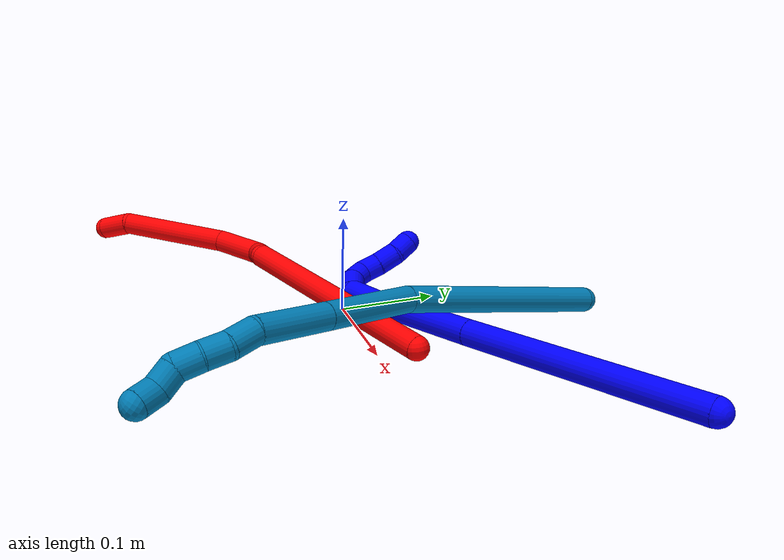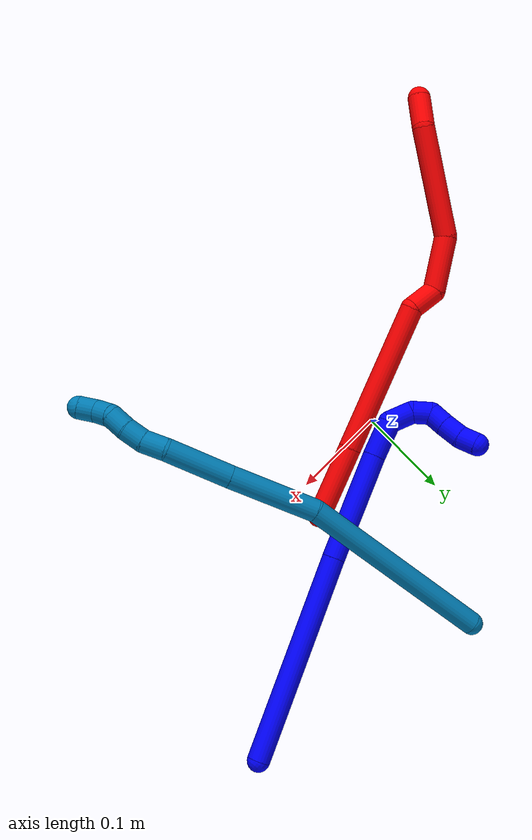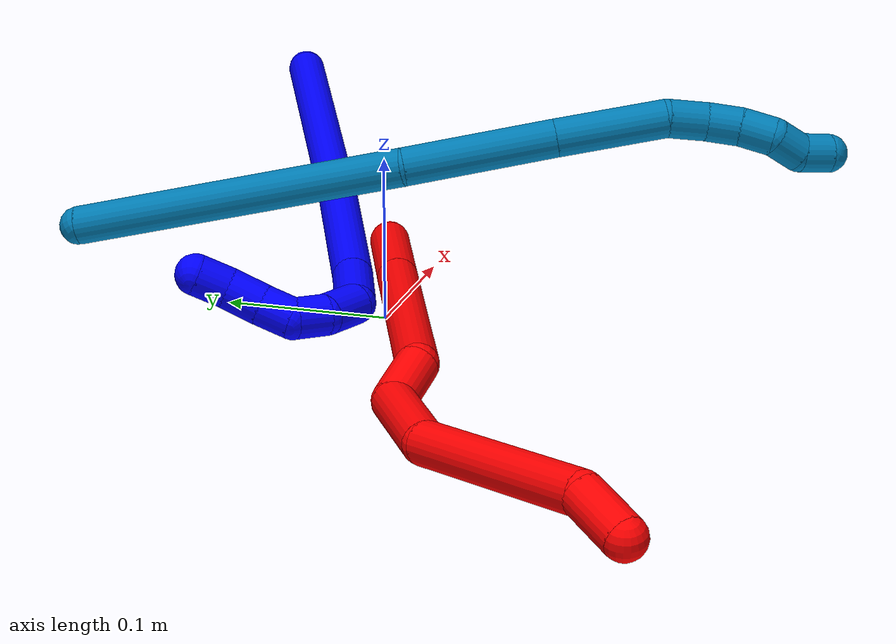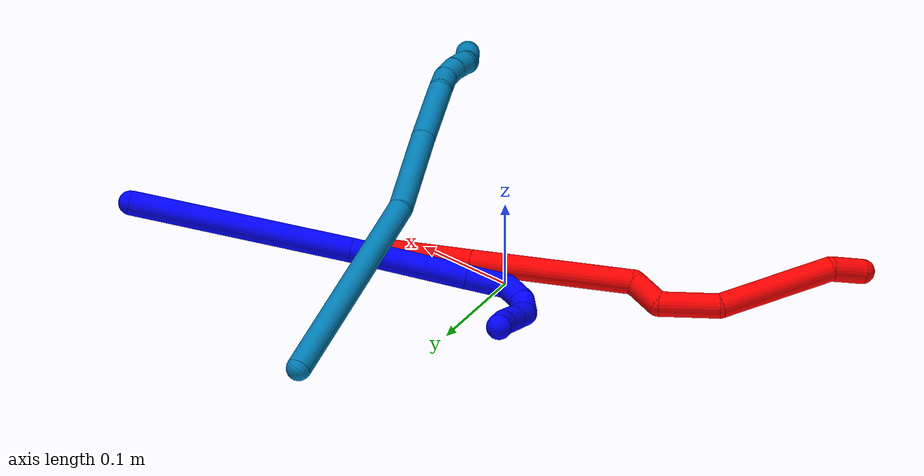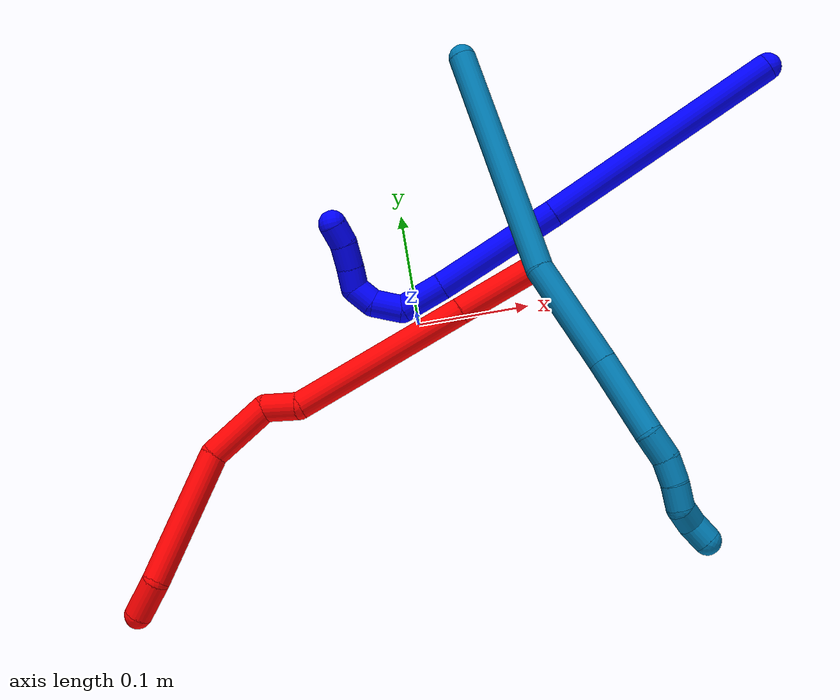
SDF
<sdf version="1.7">
 <world name="default">
  <model name="1">
   <static>0</static>
   <link name="1">
    <collision name="collision-cylinder-e_1_1_4">
     <pose>-0.006613 -0.04059 -0.106504 2.77748 -0.057953 -0.312323</pose>
     <geometry><cylinder><radius>0.0125</radius><length>0.228337</length></cylinder></geometry>
     <surface>
      <friction><ode><mu>1.16</mu><mu2>1.16</mu2><slip1>0</slip1><slip2>0</slip2></ode></friction>
      <contact><ode><kp>1e+06</kp><kd>1</kd><max_vel>0</max_vel><min_depth>0.001</min_depth></ode></contact>
     </surface>
    </collision>
    <visual name="visual-cylinder-e_1_1_4">
     <pose>-0.006613 -0.04059 -0.106504 2.77748 -0.057953 -0.312323</pose>
     <geometry><cylinder><radius>0.0125</radius><length>0.228337</length></cylinder></geometry>
     <material><ambient>0 0 1 1</ambient></material>
    </visual>
    <collision name="collision-cylinder-e_2_4_5">
     <pose>-0.016884 -0.101074 -0.269164 2.80113 -0.061324 -0.353146</pose>
     <geometry><cylinder><radius>0.0125</radius><length>0.119375</length></cylinder></geometry>
     <surface>
      <friction><ode><mu>1.16</mu><mu2>1.16</mu2><slip1>0</slip1><slip2>0</slip2></ode></friction>
      <contact><ode><kp>1e+06</kp><kd>1</kd><max_vel>0</max_vel><min_depth>0.001</min_depth></ode></contact>
     </surface>
    </collision>
    <visual name="visual-cylinder-e_2_4_5">
     <pose>-0.016884 -0.101074 -0.269164 2.80113 -0.061324 -0.353146</pose>
     <geometry><cylinder><radius>0.0125</radius><length>0.119375</length></cylinder></geometry>
     <material><ambient>0 0 1 1</ambient></material>
    </visual>
    <collision name="collision-cylinder-e_3_5_6">
     <pose>-0.022956 -0.127219 -0.344684 2.82931 -0.11809 -0.718445</pose>
     <geometry><cylinder><radius>0.0125</radius><length>0.040981</length></cylinder></geometry>
     <surface>
      <friction><ode><mu>1.16</mu><mu2>1.16</mu2><slip1>0</slip1><slip2>0</slip2></ode></friction>
      <contact><ode><kp>1e+06</kp><kd>1</kd><max_vel>0</max_vel><min_depth>0.001</min_depth></ode></contact>
     </surface>
    </collision>
    <visual name="visual-cylinder-e_3_5_6">
     <pose>-0.022956 -0.127219 -0.344684 2.82931 -0.11809 -0.718445</pose>
     <geometry><cylinder><radius>0.0125</radius><length>0.040981</length></cylinder></geometry>
     <material><ambient>0 0 1 1</ambient></material>
    </visual>
    <collision name="collision-cylinder-e_4_6_7">
     <pose>-0.030035 -0.12842 -0.375773 -2.73487 -0.350362 1.4186</pose>
     <geometry><cylinder><radius>0.0125</radius><length>0.027186</length></cylinder></geometry>
     <surface>
      <friction><ode><mu>1.16</mu><mu2>1.16</mu2><slip1>0</slip1><slip2>0</slip2></ode></friction>
      <contact><ode><kp>1e+06</kp><kd>1</kd><max_vel>0</max_vel><min_depth>0.001</min_depth></ode></contact>
     </surface>
    </collision>
    <visual name="visual-cylinder-e_4_6_7">
     <pose>-0.030035 -0.12842 -0.375773 -2.73487 -0.350362 1.4186</pose>
     <geometry><cylinder><radius>0.0125</radius><length>0.027186</length></cylinder></geometry>
     <material><ambient>0 0 1 1</ambient></material>
    </visual>
    <collision name="collision-cylinder-e_5_7_8">
     <pose>-0.038416 -0.115654 -0.393464 -2.22902 -0.363999 0.717449</pose>
     <geometry><cylinder><radius>0.0125</radius><length>0.020872</length></cylinder></geometry>
     <surface>
      <friction><ode><mu>1.16</mu><mu2>1.16</mu2><slip1>0</slip1><slip2>0</slip2></ode></friction>
      <contact><ode><kp>1e+06</kp><kd>1</kd><max_vel>0</max_vel><min_depth>0.001</min_depth></ode></contact>
     </surface>
    </collision>
    <visual name="visual-cylinder-e_5_7_8">
     <pose>-0.038416 -0.115654 -0.393464 -2.22902 -0.363999 0.717449</pose>
     <geometry><cylinder><radius>0.0125</radius><length>0.020872</length></cylinder></geometry>
     <material><ambient>0 0 1 1</ambient></material>
    </visual>
    <collision name="collision-cylinder-e_6_8_9">
     <pose>-0.047348 -0.099367 -0.398174 -1.42532 -0.541912 0.47119</pose>
     <geometry><cylinder><radius>0.0125</radius><length>0.020225</length></cylinder></geometry>
     <surface>
      <friction><ode><mu>1.16</mu><mu2>1.16</mu2><slip1>0</slip1><slip2>0</slip2></ode></friction>
      <contact><ode><kp>1e+06</kp><kd>1</kd><max_vel>0</max_vel><min_depth>0.001</min_depth></ode></contact>
     </surface>
    </collision>
    <visual name="visual-cylinder-e_6_8_9">
     <pose>-0.047348 -0.099367 -0.398174 -1.42532 -0.541912 0.47119</pose>
     <geometry><cylinder><radius>0.0125</radius><length>0.020225</length></cylinder></geometry>
     <material><ambient>0 0 1 1</ambient></material>
    </visual>
    <collision name="collision-cylinder-e_7_9_10">
     <pose>-0.05922 -0.081665 -0.395887 -1.45833 -0.62697 0.563821</pose>
     <geometry><cylinder><radius>0.0125</radius><length>0.022691</length></cylinder></geometry>
     <surface>
      <friction><ode><mu>1.16</mu><mu2>1.16</mu2><slip1>0</slip1><slip2>0</slip2></ode></friction>
      <contact><ode><kp>1e+06</kp><kd>1</kd><max_vel>0</max_vel><min_depth>0.001</min_depth></ode></contact>
     </surface>
    </collision>
    <visual name="visual-cylinder-e_7_9_10">
     <pose>-0.05922 -0.081665 -0.395887 -1.45833 -0.62697 0.563821</pose>
     <geometry><cylinder><radius>0.0125</radius><length>0.022691</length></cylinder></geometry>
     <material><ambient>0 0 1 1</ambient></material>
    </visual>
    <collision name="collision-cylinder-e_8_10_2">
     <pose>-0.072529 -0.064958 -0.396149 -1.73979 -0.713363 0.831662</pose>
     <geometry><cylinder><radius>0.0125</radius><length>0.020333</length></cylinder></geometry>
     <surface>
      <friction><ode><mu>1.16</mu><mu2>1.16</mu2><slip1>0</slip1><slip2>0</slip2></ode></friction>
      <contact><ode><kp>1e+06</kp><kd>1</kd><max_vel>0</max_vel><min_depth>0.001</min_depth></ode></contact>
     </surface>
    </collision>
    <visual name="visual-cylinder-e_8_10_2">
     <pose>-0.072529 -0.064958 -0.396149 -1.73979 -0.713363 0.831662</pose>
     <geometry><cylinder><radius>0.0125</radius><length>0.020333</length></cylinder></geometry>
     <material><ambient>0 0 1 1</ambient></material>
    </visual>
    <collision name="collision-sphere-2">
     <pose>-0.079181 -0.05738 -0.397442 0 -0 0</pose>
     <geometry><sphere><radius>0.0125</radius></sphere></geometry>
     <surface>
      <friction><ode><mu>1.16</mu><mu2>1.16</mu2><slip1>0</slip1><slip2>0</slip2></ode></friction>
      <contact><ode><kp>1e+06</kp><kd>1</kd><max_vel>0</max_vel><min_depth>0.001</min_depth></ode></contact>
     </surface>
    </collision>
    <visual name="visual-sphere-2">
     <pose>-0.079181 -0.05738 -0.397442 0 -0 0</pose>
     <geometry><sphere><radius>0.0125</radius></sphere></geometry>
     <material><ambient>0 0 1 1</ambient></material>
    </visual>
    <collision name="collision-sphere-10">
     <pose>-0.065876 -0.072535 -0.394856 0 -0 0</pose>
     <geometry><sphere><radius>0.0125</radius></sphere></geometry>
     <surface>
      <friction><ode><mu>1.16</mu><mu2>1.16</mu2><slip1>0</slip1><slip2>0</slip2></ode></friction>
      <contact><ode><kp>1e+06</kp><kd>1</kd><max_vel>0</max_vel><min_depth>0.001</min_depth></ode></contact>
     </surface>
    </collision>
    <visual name="visual-sphere-10">
     <pose>-0.065876 -0.072535 -0.394856 0 -0 0</pose>
     <geometry><sphere><radius>0.0125</radius></sphere></geometry>
     <material><ambient>0 0 1 1</ambient></material>
    </visual>
    <collision name="collision-sphere-9">
     <pose>-0.052563 -0.090795 -0.396918 0 -0 0</pose>
     <geometry><sphere><radius>0.0125</radius></sphere></geometry>
     <surface>
      <friction><ode><mu>1.16</mu><mu2>1.16</mu2><slip1>0</slip1><slip2>0</slip2></ode></friction>
      <contact><ode><kp>1e+06</kp><kd>1</kd><max_vel>0</max_vel><min_depth>0.001</min_depth></ode></contact>
     </surface>
    </collision>
    <visual name="visual-sphere-9">
     <pose>-0.052563 -0.090795 -0.396918 0 -0 0</pose>
     <geometry><sphere><radius>0.0125</radius></sphere></geometry>
     <material><ambient>0 0 1 1</ambient></material>
    </visual>
    <collision name="collision-sphere-4">
     <pose>-0.013226 -0.08118 -0.213009 0 -0 0</pose>
     <geometry><sphere><radius>0.0125</radius></sphere></geometry>
     <surface>
      <friction><ode><mu>1.16</mu><mu2>1.16</mu2><slip1>0</slip1><slip2>0</slip2></ode></friction>
      <contact><ode><kp>1e+06</kp><kd>1</kd><max_vel>0</max_vel><min_depth>0.001</min_depth></ode></contact>
     </surface>
    </collision>
    <visual name="visual-sphere-4">
     <pose>-0.013226 -0.08118 -0.213009 0 -0 0</pose>
     <geometry><sphere><radius>0.0125</radius></sphere></geometry>
     <material><ambient>0 0 1 1</ambient></material>
    </visual>
    <collision name="collision-sphere-1">
     <geometry><sphere><radius>0.0125</radius></sphere></geometry>
     <surface>
      <friction><ode><mu>1.16</mu><mu2>1.16</mu2><slip1>0</slip1><slip2>0</slip2></ode></friction>
      <contact><ode><kp>1e+06</kp><kd>1</kd><max_vel>0</max_vel><min_depth>0.001</min_depth></ode></contact>
     </surface>
    </collision>
    <visual name="visual-sphere-1">
     <geometry><sphere><radius>0.0125</radius></sphere></geometry>
     <material><ambient>0 0 1 1</ambient></material>
    </visual>
    <collision name="collision-sphere-8">
     <pose>-0.042132 -0.107939 -0.39943 0 -0 0</pose>
     <geometry><sphere><radius>0.0125</radius></sphere></geometry>
     <surface>
      <friction><ode><mu>1.16</mu><mu2>1.16</mu2><slip1>0</slip1><slip2>0</slip2></ode></friction>
      <contact><ode><kp>1e+06</kp><kd>1</kd><max_vel>0</max_vel><min_depth>0.001</min_depth></ode></contact>
     </surface>
    </collision>
    <visual name="visual-sphere-8">
     <pose>-0.042132 -0.107939 -0.39943 0 -0 0</pose>
     <geometry><sphere><radius>0.0125</radius></sphere></geometry>
     <material><ambient>0 0 1 1</ambient></material>
    </visual>
    <collision name="collision-sphere-5">
     <pose>-0.020542 -0.120968 -0.32532 0 -0 0</pose>
     <geometry><sphere><radius>0.0125</radius></sphere></geometry>
     <surface>
      <friction><ode><mu>1.16</mu><mu2>1.16</mu2><slip1>0</slip1><slip2>0</slip2></ode></friction>
      <contact><ode><kp>1e+06</kp><kd>1</kd><max_vel>0</max_vel><min_depth>0.001</min_depth></ode></contact>
     </surface>
    </collision>
    <visual name="visual-sphere-5">
     <pose>-0.020542 -0.120968 -0.32532 0 -0 0</pose>
     <geometry><sphere><radius>0.0125</radius></sphere></geometry>
     <material><ambient>0 0 1 1</ambient></material>
    </visual>
    <collision name="collision-sphere-6">
     <pose>-0.02537 -0.13347 -0.364047 0 -0 0</pose>
     <geometry><sphere><radius>0.0125</radius></sphere></geometry>
     <surface>
      <friction><ode><mu>1.16</mu><mu2>1.16</mu2><slip1>0</slip1><slip2>0</slip2></ode></friction>
      <contact><ode><kp>1e+06</kp><kd>1</kd><max_vel>0</max_vel><min_depth>0.001</min_depth></ode></contact>
     </surface>
    </collision>
    <visual name="visual-sphere-6">
     <pose>-0.02537 -0.13347 -0.364047 0 -0 0</pose>
     <geometry><sphere><radius>0.0125</radius></sphere></geometry>
     <material><ambient>0 0 1 1</ambient></material>
    </visual>
    <collision name="collision-sphere-7">
     <pose>-0.034701 -0.123369 -0.387499 0 -0 0</pose>
     <geometry><sphere><radius>0.0125</radius></sphere></geometry>
     <surface>
      <friction><ode><mu>1.16</mu><mu2>1.16</mu2><slip1>0</slip1><slip2>0</slip2></ode></friction>
      <contact><ode><kp>1e+06</kp><kd>1</kd><max_vel>0</max_vel><min_depth>0.001</min_depth></ode></contact>
     </surface>
    </collision>
    <visual name="visual-sphere-7">
     <pose>-0.034701 -0.123369 -0.387499 0 -0 0</pose>
     <geometry><sphere><radius>0.0125</radius></sphere></geometry>
     <material><ambient>0 0 1 1</ambient></material>
    </visual>
    <inertial>
     <pose>-0.019721 -0.075272 -0.22819 0 -0 0</pose>
     <mass>0.5</mass>
     <inertia>
      <ixx>0.000735</ixx>
      <ixy>0</ixy>
      <ixz>0</ixz>
      <iyy>-0.001377</iyy>
      <iyz>0</iyz>
      <izz>0.000442</izz>
     </inertia>
    </inertial>
   </link>
   <pose>0.341375 0.169291 0.055638 -0.672979 1.23132 -0.619052</pose>
  </model>
  <model name="2">
   <static>0</static>
   <link name="2">
    <collision name="collision-cylinder-e_1_1_4">
     <pose>-0.034632 -0.018535 0.011125 1.03022 -1.01277 -0.608442</pose>
     <geometry><cylinder><radius>0.0125</radius><length>0.08165</length></cylinder></geometry>
     <surface>
      <friction><ode><mu>1.16</mu><mu2>1.16</mu2><slip1>0</slip1><slip2>0</slip2></ode></friction>
      <contact><ode><kp>1e+06</kp><kd>1</kd><max_vel>0</max_vel><min_depth>0.001</min_depth></ode></contact>
     </surface>
    </collision>
    <visual name="visual-cylinder-e_1_1_4">
     <pose>-0.034632 -0.018535 0.011125 1.03022 -1.01277 -0.608442</pose>
     <geometry><cylinder><radius>0.0125</radius><length>0.08165</length></cylinder></geometry>
     <material><ambient>1 0 0 1</ambient></material>
    </visual>
    <collision name="collision-cylinder-e_2_4_5">
     <pose>-0.139704 -0.075098 0.044889 1.03381 -1.00983 -0.608848</pose>
     <geometry><cylinder><radius>0.0125</radius><length>0.166379</length></cylinder></geometry>
     <surface>
      <friction><ode><mu>1.16</mu><mu2>1.16</mu2><slip1>0</slip1><slip2>0</slip2></ode></friction>
      <contact><ode><kp>1e+06</kp><kd>1</kd><max_vel>0</max_vel><min_depth>0.001</min_depth></ode></contact>
     </surface>
    </collision>
    <visual name="visual-cylinder-e_2_4_5">
     <pose>-0.139704 -0.075098 0.044889 1.03381 -1.00983 -0.608848</pose>
     <geometry><cylinder><radius>0.0125</radius><length>0.166379</length></cylinder></geometry>
     <material><ambient>1 0 0 1</ambient></material>
    </visual>
    <collision name="collision-cylinder-e_3_5_6">
     <pose>-0.226825 -0.113369 0.065898 2.99337 -1.4723 -2.97806</pose>
     <geometry><cylinder><radius>0.0125</radius><length>0.033523</length></cylinder></geometry>
     <surface>
      <friction><ode><mu>1.16</mu><mu2>1.16</mu2><slip1>0</slip1><slip2>0</slip2></ode></friction>
      <contact><ode><kp>1e+06</kp><kd>1</kd><max_vel>0</max_vel><min_depth>0.001</min_depth></ode></contact>
     </surface>
    </collision>
    <visual name="visual-cylinder-e_3_5_6">
     <pose>-0.226825 -0.113369 0.065898 2.99337 -1.4723 -2.97806</pose>
     <geometry><cylinder><radius>0.0125</radius><length>0.033523</length></cylinder></geometry>
     <material><ambient>1 0 0 1</ambient></material>
    </visual>
    <collision name="collision-cylinder-e_4_6_7">
     <pose>-0.266298 -0.132873 0.070943 1.23718 -0.841128 -0.616399</pose>
     <geometry><cylinder><radius>0.0125</radius><length>0.061156</length></cylinder></geometry>
     <surface>
      <friction><ode><mu>1.16</mu><mu2>1.16</mu2><slip1>0</slip1><slip2>0</slip2></ode></friction>
      <contact><ode><kp>1e+06</kp><kd>1</kd><max_vel>0</max_vel><min_depth>0.001</min_depth></ode></contact>
     </surface>
    </collision>
    <visual name="visual-cylinder-e_4_6_7">
     <pose>-0.266298 -0.132873 0.070943 1.23718 -0.841128 -0.616399</pose>
     <geometry><cylinder><radius>0.0125</radius><length>0.061156</length></cylinder></geometry>
     <material><ambient>1 0 0 1</ambient></material>
    </visual>
    <collision name="collision-cylinder-e_5_7_8">
     <pose>-0.313047 -0.205436 0.093455 1.28199 -0.406792 -0.305365</pose>
     <geometry><cylinder><radius>0.0125</radius><length>0.121093</length></cylinder></geometry>
     <surface>
      <friction><ode><mu>1.16</mu><mu2>1.16</mu2><slip1>0</slip1><slip2>0</slip2></ode></friction>
      <contact><ode><kp>1e+06</kp><kd>1</kd><max_vel>0</max_vel><min_depth>0.001</min_depth></ode></contact>
     </surface>
    </collision>
    <visual name="visual-cylinder-e_5_7_8">
     <pose>-0.313047 -0.205436 0.093455 1.28199 -0.406792 -0.305365</pose>
     <geometry><cylinder><radius>0.0125</radius><length>0.121093</length></cylinder></geometry>
     <material><ambient>1 0 0 1</ambient></material>
    </visual>
    <collision name="collision-cylinder-e_6_8_2">
     <pose>-0.346994 -0.273701 0.107325 1.70148 -0.584804 -0.661183</pose>
     <geometry><cylinder><radius>0.0125</radius><length>0.036199</length></cylinder></geometry>
     <surface>
      <friction><ode><mu>1.16</mu><mu2>1.16</mu2><slip1>0</slip1><slip2>0</slip2></ode></friction>
      <contact><ode><kp>1e+06</kp><kd>1</kd><max_vel>0</max_vel><min_depth>0.001</min_depth></ode></contact>
     </surface>
    </collision>
    <visual name="visual-cylinder-e_6_8_2">
     <pose>-0.346994 -0.273701 0.107325 1.70148 -0.584804 -0.661183</pose>
     <geometry><cylinder><radius>0.0125</radius><length>0.036199</length></cylinder></geometry>
     <material><ambient>1 0 0 1</ambient></material>
    </visual>
    <collision name="collision-sphere-2">
     <pose>-0.356986 -0.288664 0.105359 0 -0 0</pose>
     <geometry><sphere><radius>0.0125</radius></sphere></geometry>
     <surface>
      <friction><ode><mu>1.16</mu><mu2>1.16</mu2><slip1>0</slip1><slip2>0</slip2></ode></friction>
      <contact><ode><kp>1e+06</kp><kd>1</kd><max_vel>0</max_vel><min_depth>0.001</min_depth></ode></contact>
     </surface>
    </collision>
    <visual name="visual-sphere-2">
     <pose>-0.356986 -0.288664 0.105359 0 -0 0</pose>
     <geometry><sphere><radius>0.0125</radius></sphere></geometry>
     <material><ambient>1 0 0 1</ambient></material>
    </visual>
    <collision name="collision-sphere-4">
     <pose>-0.069264 -0.03707 0.02225 0 -0 0</pose>
     <geometry><sphere><radius>0.0125</radius></sphere></geometry>
     <surface>
      <friction><ode><mu>1.16</mu><mu2>1.16</mu2><slip1>0</slip1><slip2>0</slip2></ode></friction>
      <contact><ode><kp>1e+06</kp><kd>1</kd><max_vel>0</max_vel><min_depth>0.001</min_depth></ode></contact>
     </surface>
    </collision>
    <visual name="visual-sphere-4">
     <pose>-0.069264 -0.03707 0.02225 0 -0 0</pose>
     <geometry><sphere><radius>0.0125</radius></sphere></geometry>
     <material><ambient>1 0 0 1</ambient></material>
    </visual>
    <collision name="collision-sphere-1">
     <geometry><sphere><radius>0.0125</radius></sphere></geometry>
     <surface>
      <friction><ode><mu>1.16</mu><mu2>1.16</mu2><slip1>0</slip1><slip2>0</slip2></ode></friction>
      <contact><ode><kp>1e+06</kp><kd>1</kd><max_vel>0</max_vel><min_depth>0.001</min_depth></ode></contact>
     </surface>
    </collision>
    <visual name="visual-sphere-1">
     <geometry><sphere><radius>0.0125</radius></sphere></geometry>
     <material><ambient>1 0 0 1</ambient></material>
    </visual>
    <collision name="collision-sphere-8">
     <pose>-0.337003 -0.258738 0.109292 0 -0 0</pose>
     <geometry><sphere><radius>0.0125</radius></sphere></geometry>
     <surface>
      <friction><ode><mu>1.16</mu><mu2>1.16</mu2><slip1>0</slip1><slip2>0</slip2></ode></friction>
      <contact><ode><kp>1e+06</kp><kd>1</kd><max_vel>0</max_vel><min_depth>0.001</min_depth></ode></contact>
     </surface>
    </collision>
    <visual name="visual-sphere-8">
     <pose>-0.337003 -0.258738 0.109292 0 -0 0</pose>
     <geometry><sphere><radius>0.0125</radius></sphere></geometry>
     <material><ambient>1 0 0 1</ambient></material>
    </visual>
    <collision name="collision-sphere-5">
     <pose>-0.210144 -0.113126 0.067529 0 -0 0</pose>
     <geometry><sphere><radius>0.0125</radius></sphere></geometry>
     <surface>
      <friction><ode><mu>1.16</mu><mu2>1.16</mu2><slip1>0</slip1><slip2>0</slip2></ode></friction>
      <contact><ode><kp>1e+06</kp><kd>1</kd><max_vel>0</max_vel><min_depth>0.001</min_depth></ode></contact>
     </surface>
    </collision>
    <visual name="visual-sphere-5">
     <pose>-0.210144 -0.113126 0.067529 0 -0 0</pose>
     <geometry><sphere><radius>0.0125</radius></sphere></geometry>
     <material><ambient>1 0 0 1</ambient></material>
    </visual>
    <collision name="collision-sphere-6">
     <pose>-0.243505 -0.113613 0.064268 0 -0 0</pose>
     <geometry><sphere><radius>0.0125</radius></sphere></geometry>
     <surface>
      <friction><ode><mu>1.16</mu><mu2>1.16</mu2><slip1>0</slip1><slip2>0</slip2></ode></friction>
      <contact><ode><kp>1e+06</kp><kd>1</kd><max_vel>0</max_vel><min_depth>0.001</min_depth></ode></contact>
     </surface>
    </collision>
    <visual name="visual-sphere-6">
     <pose>-0.243505 -0.113613 0.064268 0 -0 0</pose>
     <geometry><sphere><radius>0.0125</radius></sphere></geometry>
     <material><ambient>1 0 0 1</ambient></material>
    </visual>
    <collision name="collision-sphere-7">
     <pose>-0.28909 -0.152133 0.077618 0 -0 0</pose>
     <geometry><sphere><radius>0.0125</radius></sphere></geometry>
     <surface>
      <friction><ode><mu>1.16</mu><mu2>1.16</mu2><slip1>0</slip1><slip2>0</slip2></ode></friction>
      <contact><ode><kp>1e+06</kp><kd>1</kd><max_vel>0</max_vel><min_depth>0.001</min_depth></ode></contact>
     </surface>
    </collision>
    <visual name="visual-sphere-7">
     <pose>-0.28909 -0.152133 0.077618 0 -0 0</pose>
     <geometry><sphere><radius>0.0125</radius></sphere></geometry>
     <material><ambient>1 0 0 1</ambient></material>
    </visual>
    <inertial>
     <pose>-0.200859 -0.121438 0.060253 0 -0 0</pose>
     <mass>0.5</mass>
     <inertia>
      <ixx>0.000125</ixx>
      <ixy>0</ixy>
      <ixz>0</ixz>
      <iyy>0.000237</iyy>
      <iyz>0</iyz>
      <izz>0.000817</izz>
     </inertia>
    </inertial>
   </link>
   <pose>0.114167 0.03373 0.009665 0.092354 -0.217867 -0.127751</pose>
  </model>
  <model name="9">
   <static>0</static>
   <link name="9">
    <collision name="collision-cylinder-e_1_1_4">
     <pose>-0.016926 -0.058798 0.09027 0.57733 -0.155842 -0.046364</pose>
     <geometry><cylinder><radius>0.0125</radius><length>0.218104</length></cylinder></geometry>
     <surface>
      <friction><ode><mu>1.16</mu><mu2>1.16</mu2><slip1>0</slip1><slip2>0</slip2></ode></friction>
      <contact><ode><kp>1e+06</kp><kd>1</kd><max_vel>0</max_vel><min_depth>0.001</min_depth></ode></contact>
     </surface>
    </collision>
    <visual name="visual-cylinder-e_1_1_4">
     <pose>-0.016926 -0.058798 0.09027 0.57733 -0.155842 -0.046364</pose>
     <geometry><cylinder><radius>0.0125</radius><length>0.218104</length></cylinder></geometry>
     <material><ambient>0 0.490196 0.709804 1</ambient></material>
    </visual>
    <collision name="collision-cylinder-e_2_4_5">
     <pose>-0.036159 -0.153053 0.214689 0.804183 -0.046823 -0.019915</pose>
     <geometry><cylinder><radius>0.0125</radius><length>0.098565</length></cylinder></geometry>
     <surface>
      <friction><ode><mu>1.16</mu><mu2>1.16</mu2><slip1>0</slip1><slip2>0</slip2></ode></friction>
      <contact><ode><kp>1e+06</kp><kd>1</kd><max_vel>0</max_vel><min_depth>0.001</min_depth></ode></contact>
     </surface>
    </collision>
    <visual name="visual-cylinder-e_2_4_5">
     <pose>-0.036159 -0.153053 0.214689 0.804183 -0.046823 -0.019915</pose>
     <geometry><cylinder><radius>0.0125</radius><length>0.098565</length></cylinder></geometry>
     <material><ambient>0 0.490196 0.709804 1</ambient></material>
    </visual>
    <collision name="collision-cylinder-e_3_5_6">
     <pose>-0.040826 -0.214082 0.274142 0.790676 -0.065508 -0.027345</pose>
     <geometry><cylinder><radius>0.0125</radius><length>0.072103</length></cylinder></geometry>
     <surface>
      <friction><ode><mu>1.16</mu><mu2>1.16</mu2><slip1>0</slip1><slip2>0</slip2></ode></friction>
      <contact><ode><kp>1e+06</kp><kd>1</kd><max_vel>0</max_vel><min_depth>0.001</min_depth></ode></contact>
     </surface>
    </collision>
    <visual name="visual-cylinder-e_3_5_6">
     <pose>-0.040826 -0.214082 0.274142 0.790676 -0.065508 -0.027345</pose>
     <geometry><cylinder><radius>0.0125</radius><length>0.072103</length></cylinder></geometry>
     <material><ambient>0 0.490196 0.709804 1</ambient></material>
    </visual>
    <collision name="collision-cylinder-e_4_6_7">
     <pose>-0.046213 -0.250524 0.305923 1.03337 -0.234868 -0.133861</pose>
     <geometry><cylinder><radius>0.0125</radius><length>0.026022</length></cylinder></geometry>
     <surface>
      <friction><ode><mu>1.16</mu><mu2>1.16</mu2><slip1>0</slip1><slip2>0</slip2></ode></friction>
      <contact><ode><kp>1e+06</kp><kd>1</kd><max_vel>0</max_vel><min_depth>0.001</min_depth></ode></contact>
     </surface>
    </collision>
    <visual name="visual-cylinder-e_4_6_7">
     <pose>-0.046213 -0.250524 0.305923 1.03337 -0.234868 -0.133861</pose>
     <geometry><cylinder><radius>0.0125</radius><length>0.026022</length></cylinder></geometry>
     <material><ambient>0 0.490196 0.709804 1</ambient></material>
    </visual>
    <collision name="collision-cylinder-e_5_7_8">
     <pose>-0.053613 -0.268954 0.319261 0.833847 -0.404572 -0.181167</pose>
     <geometry><cylinder><radius>0.0125</radius><length>0.022211</length></cylinder></geometry>
     <surface>
      <friction><ode><mu>1.16</mu><mu2>1.16</mu2><slip1>0</slip1><slip2>0</slip2></ode></friction>
      <contact><ode><kp>1e+06</kp><kd>1</kd><max_vel>0</max_vel><min_depth>0.001</min_depth></ode></contact>
     </surface>
    </collision>
    <visual name="visual-cylinder-e_5_7_8">
     <pose>-0.053613 -0.268954 0.319261 0.833847 -0.404572 -0.181167</pose>
     <geometry><cylinder><radius>0.0125</radius><length>0.022211</length></cylinder></geometry>
     <material><ambient>0 0.490196 0.709804 1</ambient></material>
    </visual>
    <collision name="collision-cylinder-e_6_8_9">
     <pose>-0.063886 -0.28345 0.332391 0.835856 -0.563077 -0.255481</pose>
     <geometry><cylinder><radius>0.0125</radius><length>0.022114</length></cylinder></geometry>
     <surface>
      <friction><ode><mu>1.16</mu><mu2>1.16</mu2><slip1>0</slip1><slip2>0</slip2></ode></friction>
      <contact><ode><kp>1e+06</kp><kd>1</kd><max_vel>0</max_vel><min_depth>0.001</min_depth></ode></contact>
     </surface>
    </collision>
    <visual name="visual-cylinder-e_6_8_9">
     <pose>-0.063886 -0.28345 0.332391 0.835856 -0.563077 -0.255481</pose>
     <geometry><cylinder><radius>0.0125</radius><length>0.022114</length></cylinder></geometry>
     <material><ambient>0 0.490196 0.709804 1</ambient></material>
    </visual>
    <collision name="collision-cylinder-e_7_9_10">
     <pose>-0.074839 -0.299265 0.339822 1.4408 -0.51353 -0.45303</pose>
     <geometry><cylinder><radius>0.0125</radius><length>0.02056</length></cylinder></geometry>
     <surface>
      <friction><ode><mu>1.16</mu><mu2>1.16</mu2><slip1>0</slip1><slip2>0</slip2></ode></friction>
      <contact><ode><kp>1e+06</kp><kd>1</kd><max_vel>0</max_vel><min_depth>0.001</min_depth></ode></contact>
     </surface>
    </collision>
    <visual name="visual-cylinder-e_7_9_10">
     <pose>-0.074839 -0.299265 0.339822 1.4408 -0.51353 -0.45303</pose>
     <geometry><cylinder><radius>0.0125</radius><length>0.02056</length></cylinder></geometry>
     <material><ambient>0 0.490196 0.709804 1</ambient></material>
    </visual>
    <collision name="collision-cylinder-e_8_10_2">
     <pose>-0.081112 -0.317231 0.34536 1.12193 -0.12064 -0.075853</pose>
     <geometry><cylinder><radius>0.0125</radius><length>0.020321</length></cylinder></geometry>
     <surface>
      <friction><ode><mu>1.16</mu><mu2>1.16</mu2><slip1>0</slip1><slip2>0</slip2></ode></friction>
      <contact><ode><kp>1e+06</kp><kd>1</kd><max_vel>0</max_vel><min_depth>0.001</min_depth></ode></contact>
     </surface>
    </collision>
    <visual name="visual-cylinder-e_8_10_2">
     <pose>-0.081112 -0.317231 0.34536 1.12193 -0.12064 -0.075853</pose>
     <geometry><cylinder><radius>0.0125</radius><length>0.020321</length></cylinder></geometry>
     <material><ambient>0 0.490196 0.709804 1</ambient></material>
    </visual>
    <collision name="collision-sphere-2">
     <pose>-0.082334 -0.326319 0.349737 0 -0 0</pose>
     <geometry><sphere><radius>0.0125</radius></sphere></geometry>
     <surface>
      <friction><ode><mu>1.16</mu><mu2>1.16</mu2><slip1>0</slip1><slip2>0</slip2></ode></friction>
      <contact><ode><kp>1e+06</kp><kd>1</kd><max_vel>0</max_vel><min_depth>0.001</min_depth></ode></contact>
     </surface>
    </collision>
    <visual name="visual-sphere-2">
     <pose>-0.082334 -0.326319 0.349737 0 -0 0</pose>
     <geometry><sphere><radius>0.0125</radius></sphere></geometry>
     <material><ambient>0 0.490196 0.709804 1</ambient></material>
    </visual>
    <collision name="collision-sphere-10">
     <pose>-0.079889 -0.308144 0.340982 0 -0 0</pose>
     <geometry><sphere><radius>0.0125</radius></sphere></geometry>
     <surface>
      <friction><ode><mu>1.16</mu><mu2>1.16</mu2><slip1>0</slip1><slip2>0</slip2></ode></friction>
      <contact><ode><kp>1e+06</kp><kd>1</kd><max_vel>0</max_vel><min_depth>0.001</min_depth></ode></contact>
     </surface>
    </collision>
    <visual name="visual-sphere-10">
     <pose>-0.079889 -0.308144 0.340982 0 -0 0</pose>
     <geometry><sphere><radius>0.0125</radius></sphere></geometry>
     <material><ambient>0 0.490196 0.709804 1</ambient></material>
    </visual>
    <collision name="collision-sphere-9">
     <pose>-0.069788 -0.290387 0.338661 0 -0 0</pose>
     <geometry><sphere><radius>0.0125</radius></sphere></geometry>
     <surface>
      <friction><ode><mu>1.16</mu><mu2>1.16</mu2><slip1>0</slip1><slip2>0</slip2></ode></friction>
      <contact><ode><kp>1e+06</kp><kd>1</kd><max_vel>0</max_vel><min_depth>0.001</min_depth></ode></contact>
     </surface>
    </collision>
    <visual name="visual-sphere-9">
     <pose>-0.069788 -0.290387 0.338661 0 -0 0</pose>
     <geometry><sphere><radius>0.0125</radius></sphere></geometry>
     <material><ambient>0 0.490196 0.709804 1</ambient></material>
    </visual>
    <collision name="collision-sphere-4">
     <pose>-0.033852 -0.117596 0.180539 0 -0 0</pose>
     <geometry><sphere><radius>0.0125</radius></sphere></geometry>
     <surface>
      <friction><ode><mu>1.16</mu><mu2>1.16</mu2><slip1>0</slip1><slip2>0</slip2></ode></friction>
      <contact><ode><kp>1e+06</kp><kd>1</kd><max_vel>0</max_vel><min_depth>0.001</min_depth></ode></contact>
     </surface>
    </collision>
    <visual name="visual-sphere-4">
     <pose>-0.033852 -0.117596 0.180539 0 -0 0</pose>
     <geometry><sphere><radius>0.0125</radius></sphere></geometry>
     <material><ambient>0 0.490196 0.709804 1</ambient></material>
    </visual>
    <collision name="collision-sphere-1">
     <geometry><sphere><radius>0.0125</radius></sphere></geometry>
     <surface>
      <friction><ode><mu>1.16</mu><mu2>1.16</mu2><slip1>0</slip1><slip2>0</slip2></ode></friction>
      <contact><ode><kp>1e+06</kp><kd>1</kd><max_vel>0</max_vel><min_depth>0.001</min_depth></ode></contact>
     </surface>
    </collision>
    <visual name="visual-sphere-1">
     <geometry><sphere><radius>0.0125</radius></sphere></geometry>
     <material><ambient>0 0.490196 0.709804 1</ambient></material>
    </visual>
    <collision name="collision-sphere-8">
     <pose>-0.057984 -0.276514 0.326122 0 -0 0</pose>
     <geometry><sphere><radius>0.0125</radius></sphere></geometry>
     <surface>
      <friction><ode><mu>1.16</mu><mu2>1.16</mu2><slip1>0</slip1><slip2>0</slip2></ode></friction>
      <contact><ode><kp>1e+06</kp><kd>1</kd><max_vel>0</max_vel><min_depth>0.001</min_depth></ode></contact>
     </surface>
    </collision>
    <visual name="visual-sphere-8">
     <pose>-0.057984 -0.276514 0.326122 0 -0 0</pose>
     <geometry><sphere><radius>0.0125</radius></sphere></geometry>
     <material><ambient>0 0.490196 0.709804 1</ambient></material>
    </visual>
    <collision name="collision-sphere-5">
     <pose>-0.038466 -0.188511 0.248839 0 -0 0</pose>
     <geometry><sphere><radius>0.0125</radius></sphere></geometry>
     <surface>
      <friction><ode><mu>1.16</mu><mu2>1.16</mu2><slip1>0</slip1><slip2>0</slip2></ode></friction>
      <contact><ode><kp>1e+06</kp><kd>1</kd><max_vel>0</max_vel><min_depth>0.001</min_depth></ode></contact>
     </surface>
    </collision>
    <visual name="visual-sphere-5">
     <pose>-0.038466 -0.188511 0.248839 0 -0 0</pose>
     <geometry><sphere><radius>0.0125</radius></sphere></geometry>
     <material><ambient>0 0.490196 0.709804 1</ambient></material>
    </visual>
    <collision name="collision-sphere-6">
     <pose>-0.043186 -0.239654 0.299445 0 -0 0</pose>
     <geometry><sphere><radius>0.0125</radius></sphere></geometry>
     <surface>
      <friction><ode><mu>1.16</mu><mu2>1.16</mu2><slip1>0</slip1><slip2>0</slip2></ode></friction>
      <contact><ode><kp>1e+06</kp><kd>1</kd><max_vel>0</max_vel><min_depth>0.001</min_depth></ode></contact>
     </surface>
    </collision>
    <visual name="visual-sphere-6">
     <pose>-0.043186 -0.239654 0.299445 0 -0 0</pose>
     <geometry><sphere><radius>0.0125</radius></sphere></geometry>
     <material><ambient>0 0.490196 0.709804 1</ambient></material>
    </visual>
    <collision name="collision-sphere-7">
     <pose>-0.049241 -0.261394 0.3124 0 -0 0</pose>
     <geometry><sphere><radius>0.0125</radius></sphere></geometry>
     <surface>
      <friction><ode><mu>1.16</mu><mu2>1.16</mu2><slip1>0</slip1><slip2>0</slip2></ode></friction>
      <contact><ode><kp>1e+06</kp><kd>1</kd><max_vel>0</max_vel><min_depth>0.001</min_depth></ode></contact>
     </surface>
    </collision>
    <visual name="visual-sphere-7">
     <pose>-0.049241 -0.261394 0.3124 0 -0 0</pose>
     <geometry><sphere><radius>0.0125</radius></sphere></geometry>
     <material><ambient>0 0.490196 0.709804 1</ambient></material>
    </visual>
    <inertial>
     <pose>-0.034385 -0.149413 0.194045 0 -0 0</pose>
     <mass>0.5</mass>
     <inertia>
      <ixx>0.000937</ixx>
      <ixy>0</ixy>
      <ixz>0</ixz>
      <iyy>0.000752</iyy>
      <iyz>0</iyz>
      <izz>0.000734</izz>
     </inertia>
    </inertial>
   </link>
   <pose>0.078797 0.234007 0.012518 0.476389 -0.818167 0.648169</pose>
  </model>
 </world>
</sdf>
